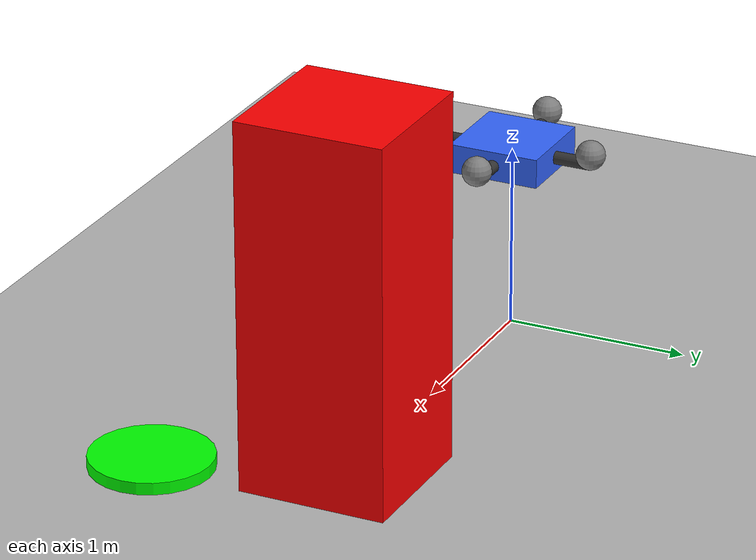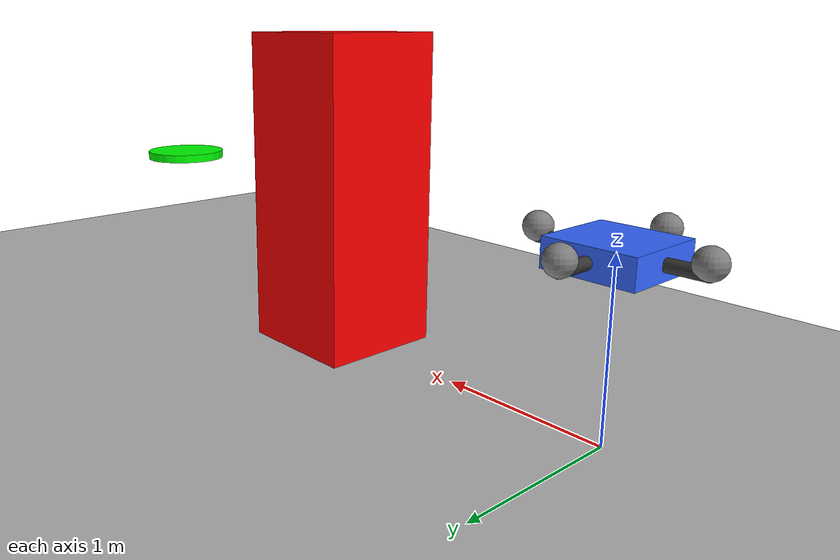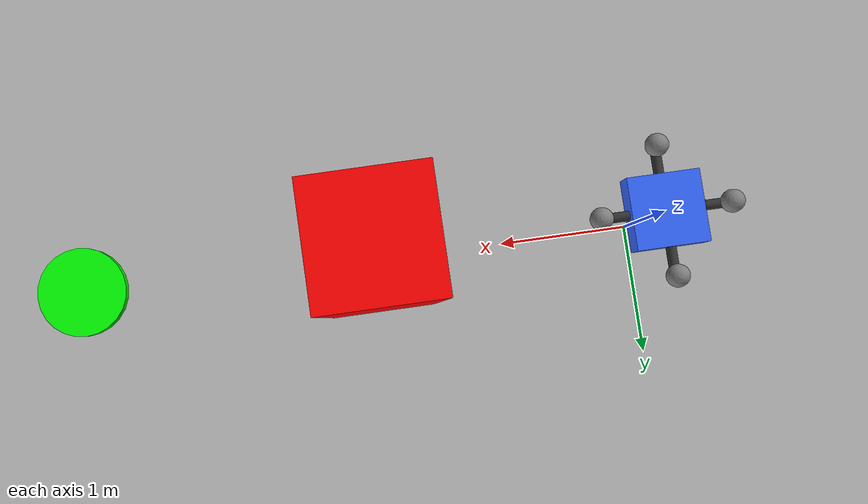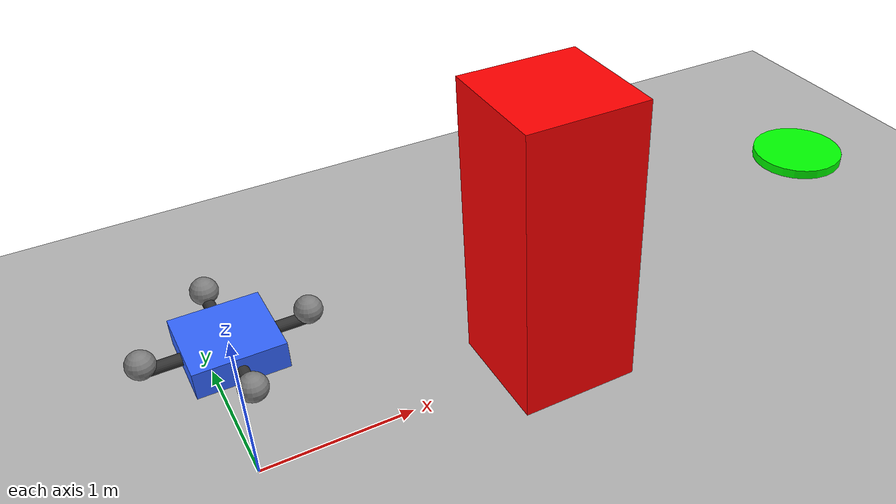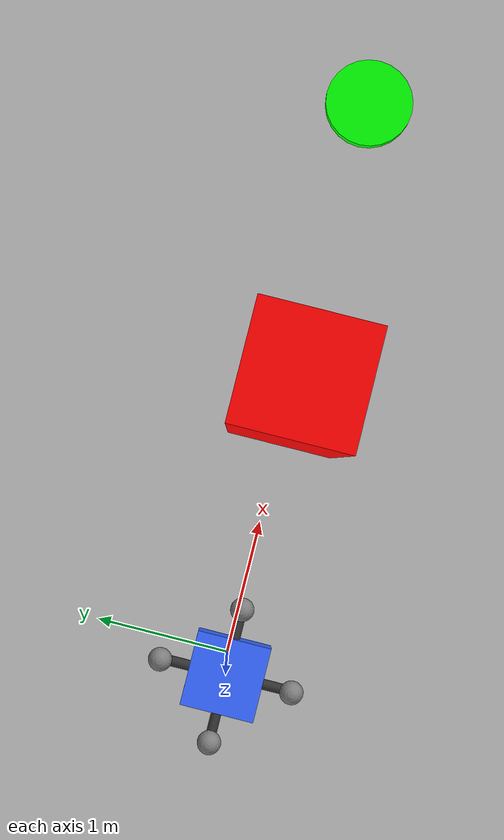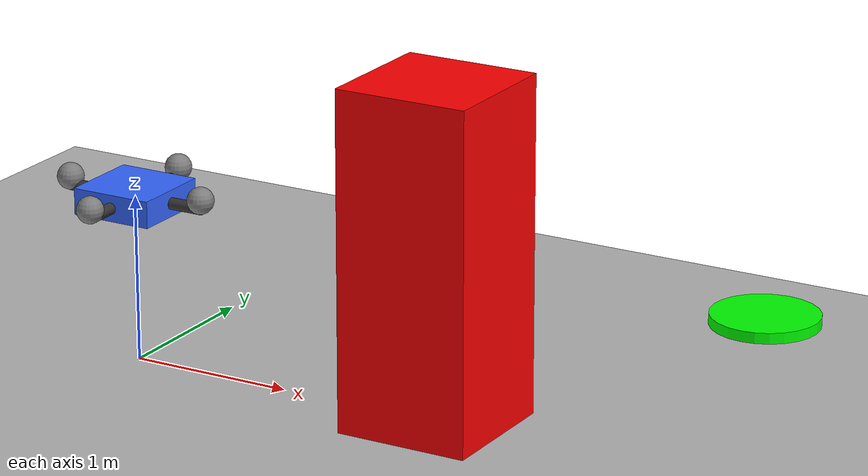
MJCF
<mujoco model="autonomous_drone">

    <compiler angle="degree" coordinate="local"/>

    <option timestep="0.002" gravity="0 0 -9.81"/>

    <visual>
        <headlight ambient="0.5 0.5 0.5"
                   diffuse="0.8 0.8 0.8"
                   specular="0.1 0.1 0.1"/>
    </visual>

    <worldbody>

        <!-- Ground -->
        <geom name="ground"
              type="plane"
              size="20 20 0.1"
              pos="0 0 0"
              rgba="0.7 0.7 0.7 1"/>

        <!-- Drone -->
        <body name="drone" pos="0 0 1">
            <freejoint name="drone_free"/>

            <!-- Main drone body -->
            <geom name="body"
                  type="box"
                  size="0.25 0.25 0.08"
                  mass="1.0"
                  rgba="0.2 0.4 1 1"/>

            <!-- Four arms -->
            <geom name="arm_front"
                  type="capsule"
                  fromto="0 0 0 0.45 0 0"
                  size="0.035"
                  mass="0"
                  rgba="0.2 0.2 0.2 1"/>

            <geom name="arm_back"
                  type="capsule"
                  fromto="0 0 0 -0.45 0 0"
                  size="0.035"
                  mass="0"
                  rgba="0.2 0.2 0.2 1"/>

            <geom name="arm_left"
                  type="capsule"
                  fromto="0 0 0 0 0.45 0"
                  size="0.035"
                  mass="0"
                  rgba="0.2 0.2 0.2 1"/>

            <geom name="arm_right"
                  type="capsule"
                  fromto="0 0 0 0 -0.45 0"
                  size="0.035"
                  mass="0"
                  rgba="0.2 0.2 0.2 1"/>

            <!-- Rotor sites -->
            <site name="rotor_1"
                  pos="0.45 0 0.05"
                  size="0.08"/>

            <site name="rotor_2"
                  pos="-0.45 0 0.05"
                  size="0.08"/>

            <site name="rotor_3"
                  pos="0 0.45 0.05"
                  size="0.08"/>

            <site name="rotor_4"
                  pos="0 -0.45 0.05"
                  size="0.08"/>

        </body>

        <!-- Obstacle: visible AND collidable -->
        <geom name="obstacle"
              type="box"
              pos="2 0 1"
              size="0.4 0.4 1"
              rgba="1 0 0 1"
              contype="1"
              conaffinity="1"/>

        <!-- Target marker -->
        <site name="target"
              type="cylinder"
              pos="4 0 1"
              size="0.3 0.03"
              rgba="0 1 0 1"/>

        <!-- Camera -->
        <camera name="main_camera"
                pos="6 -6 4"
                xyaxes="0.707 0.707 0 -0.25 0.25 0.935"/>

        <!-- Light -->
        <light name="sun"
               pos="0 0 8"
               dir="0 0 -1"/>

    </worldbody>

</mujoco>
